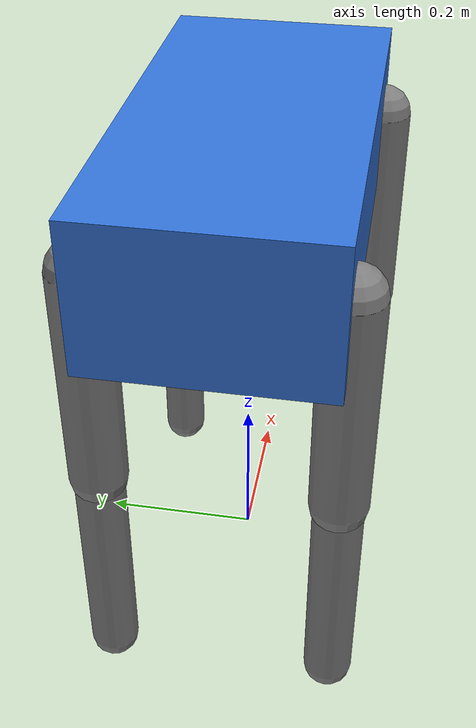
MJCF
<?xml version="1.0" encoding="UTF-8"?>
<mujoco model="sim2policy_sample_quadruped">
  <compiler angle="degree"/>
  <option gravity="0 0 -9.81" timestep="0.004"/>
  <default>
    <motor ctrllimited="true" ctrlrange="-1 1"/>
  </default>
  <worldbody>
    <body name="torso" pos="0 0 0.55">
      <freejoint name="root_free"/>
      <geom name="torso_geom" type="box" size="0.28 0.14 0.09" rgba="0.20 0.45 0.85 1"/>
      <body name="front_left_upper" pos="0.22 0.14 0">
        <joint name="front_left_hip" type="hinge" axis="0 1 0" range="-55 55"/>
        <geom name="front_left_upper_geom" type="capsule" size="0.035 0.14" pos="0 0 -0.14"/>
        <body name="front_left_lower" pos="0 0 -0.28">
          <joint name="front_left_knee" type="hinge" axis="0 1 0" range="-120 10"/>
          <geom name="front_left_lower_geom" type="capsule" size="0.03 0.14" pos="0 0 -0.14"/>
        </body>
      </body>
      <body name="front_right_upper" pos="0.22 -0.14 0">
        <joint name="front_right_hip" type="hinge" axis="0 1 0" range="-55 55"/>
        <geom name="front_right_upper_geom" type="capsule" size="0.035 0.14" pos="0 0 -0.14"/>
        <body name="front_right_lower" pos="0 0 -0.28">
          <joint name="front_right_knee" type="hinge" axis="0 1 0" range="-120 10"/>
          <geom name="front_right_lower_geom" type="capsule" size="0.03 0.14" pos="0 0 -0.14"/>
        </body>
      </body>
      <body name="rear_left_upper" pos="-0.22 0.14 0">
        <joint name="rear_left_hip" type="hinge" axis="0 1 0" range="-55 55"/>
        <geom name="rear_left_upper_geom" type="capsule" size="0.035 0.14" pos="0 0 -0.14"/>
        <body name="rear_left_lower" pos="0 0 -0.28">
          <joint name="rear_left_knee" type="hinge" axis="0 1 0" range="-120 10"/>
          <geom name="rear_left_lower_geom" type="capsule" size="0.03 0.14" pos="0 0 -0.14"/>
        </body>
      </body>
      <body name="rear_right_upper" pos="-0.22 -0.14 0">
        <joint name="rear_right_hip" type="hinge" axis="0 1 0" range="-55 55"/>
        <geom name="rear_right_upper_geom" type="capsule" size="0.035 0.14" pos="0 0 -0.14"/>
        <body name="rear_right_lower" pos="0 0 -0.28">
          <joint name="rear_right_knee" type="hinge" axis="0 1 0" range="-120 10"/>
          <geom name="rear_right_lower_geom" type="capsule" size="0.03 0.14" pos="0 0 -0.14"/>
        </body>
      </body>
    </body>
  </worldbody>
  <actuator>
    <motor name="front_left_hip_motor" joint="front_left_hip" gear="45"/>
    <motor name="front_left_knee_motor" joint="front_left_knee" gear="45"/>
    <motor name="front_right_hip_motor" joint="front_right_hip" gear="45"/>
    <motor name="front_right_knee_motor" joint="front_right_knee" gear="45"/>
    <motor name="rear_left_hip_motor" joint="rear_left_hip" gear="45"/>
    <motor name="rear_left_knee_motor" joint="rear_left_knee" gear="45"/>
    <motor name="rear_right_hip_motor" joint="rear_right_hip" gear="45"/>
    <motor name="rear_right_knee_motor" joint="rear_right_knee" gear="45"/>
  </actuator>
</mujoco>
